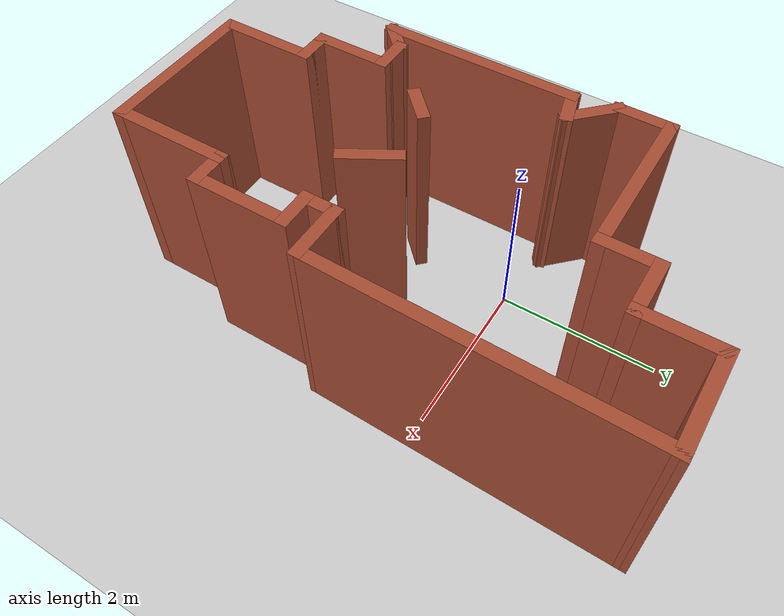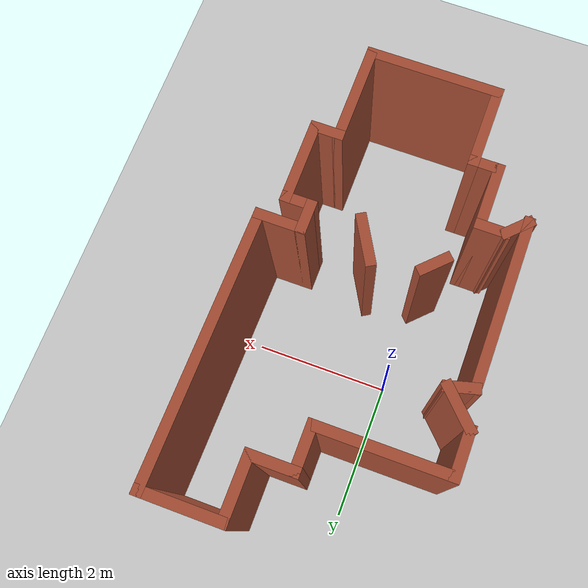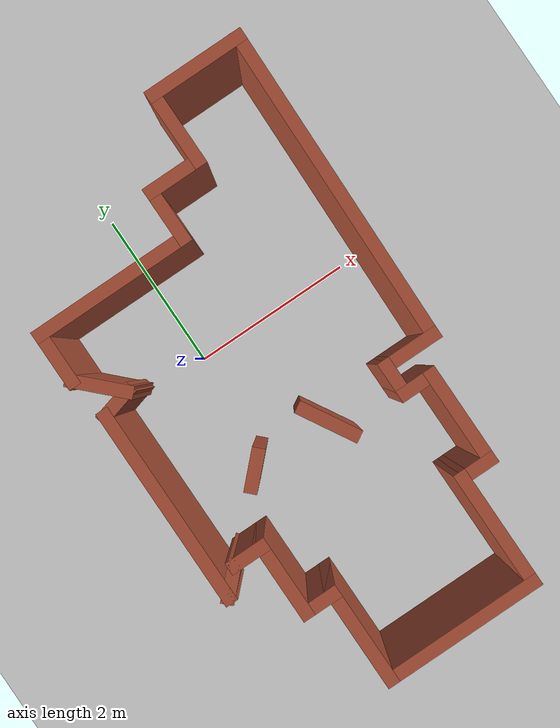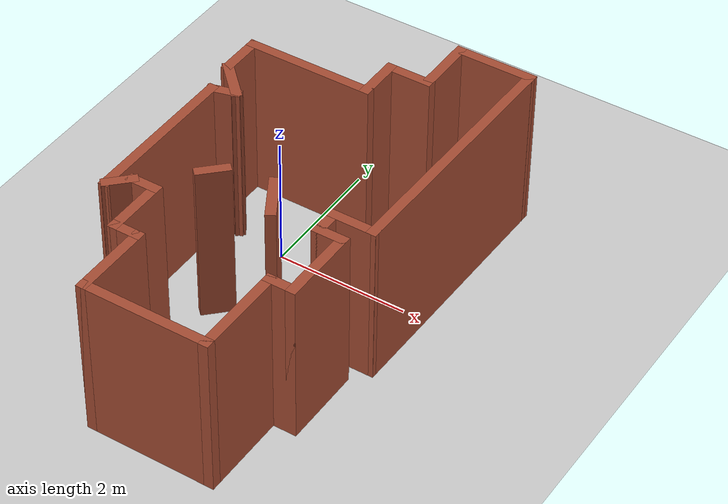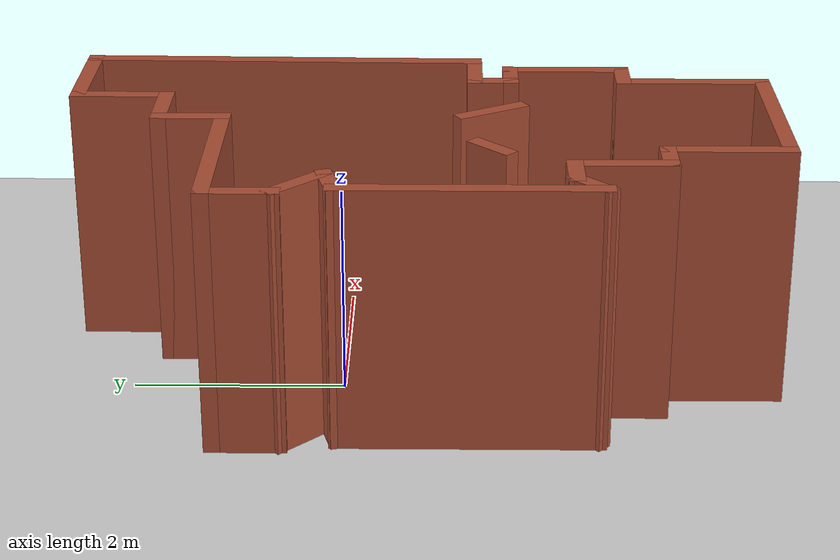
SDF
<sdf version="1.7">
 <world name="default">
  <light name="sun" type="directional">
   <pose>0 0 10 0 -0 0</pose>
   <diffuse>0.8 0.8 0.8 1</diffuse>
   <specular>0.2 0.2 0.2 1</specular>
   <attenuation>
    <range>1000</range>
    <constant>0.9</constant>
    <linear>0.01</linear>
    <quadratic>0.001</quadratic>
   </attenuation>
   <direction>-0.5 0.1 -0.9</direction>
   <spot><inner_angle>0</inner_angle><outer_angle>0</outer_angle><falloff>0</falloff></spot>
  </light>
  <model name="ground_plane">
   <static>1</static>
   <link name="link">
    <collision name="collision">
     <geometry><plane><normal>0 0 1</normal><size>100 100</size></plane></geometry>
     <surface>
      <contact><collide_bitmask>65535</collide_bitmask></contact>
      <friction><ode><mu>100</mu><mu2>50</mu2></ode></friction>
     </surface>
    </collision>
    <visual name="visual">
     <cast_shadows>0</cast_shadows>
     <geometry><plane><normal>0 0 1</normal><size>100 100</size></plane></geometry>
     <material>
      <script><uri>file://media/materials/scripts/gazebo.material</uri><name>Gazebo/Grey</name></script>
     </material>
    </visual>
   </link>
  </model>
  <gravity>0 0 -9.8</gravity>
  <magnetic_field>6e-06 2.3e-05 -4.2e-05</magnetic_field>
  <atmosphere type="adiabatic"/>
  <physics name="default_physics" default="0" type="ode">
   <max_step_size>0.001</max_step_size>
   <real_time_factor>1</real_time_factor>
   <real_time_update_rate>1000</real_time_update_rate>
  </physics>
  <scene><ambient>0.4 0.4 0.4 1</ambient><background>0.7 0.7 0.7 1</background><shadows>1</shadows></scene>
  <audio><device>default</device></audio>
  <spherical_coordinates>
   <surface_model>EARTH_WGS84</surface_model>
   <latitude_deg>0</latitude_deg>
   <longitude_deg>0</longitude_deg>
   <elevation>0</elevation>
   <heading_deg>0</heading_deg>
  </spherical_coordinates>
  <model name="map_2">
   <pose>0.55153 -0.722605 0 0 -0 0</pose>
   <link name="Wall_10">
    <collision name="Wall_10_Collision">
     <geometry><box><size>2.5 0.15 2.5</size></box></geometry>
     <pose>0 0 1.25 0 -0 0</pose>
    </collision>
    <visual name="Wall_10_Visual">
     <pose>0 0 1.25 0 -0 0</pose>
     <geometry><box><size>2.5 0.15 2.5</size></box></geometry>
     <material>
      <script><uri>file://media/materials/scripts/gazebo.material</uri><name>Gazebo/Bricks</name></script>
      <ambient>1 1 1 1</ambient>
     </material>
     <meta><layer>0</layer></meta>
    </visual>
    <pose>-1.67392 -0.431815 0 0 -0 -1.5708</pose>
   </link>
   <link name="Wall_11">
    <collision name="Wall_11_Collision">
     <geometry><box><size>0.5 0.15 2.5</size></box></geometry>
     <pose>0 0 1.25 0 -0 0</pose>
    </collision>
    <visual name="Wall_11_Visual">
     <pose>0 0 1.25 0 -0 0</pose>
     <geometry><box><size>0.5 0.15 2.5</size></box></geometry>
     <material>
      <script><uri>file://media/materials/scripts/gazebo.material</uri><name>Gazebo/Bricks</name></script>
      <ambient>1 1 1 1</ambient>
     </material>
     <meta><layer>0</layer></meta>
    </visual>
    <pose>-1.55018 -1.48307 0 0 -0 0.785398</pose>
   </link>
   <link name="Wall_12">
    <collision name="Wall_12_Collision">
     <geometry><box><size>0.5 0.15 2.5</size></box></geometry>
     <pose>0 0 1.25 0 -0 0</pose>
    </collision>
    <visual name="Wall_12_Visual">
     <pose>0 0 1.25 0 -0 0</pose>
     <geometry><box><size>0.5 0.15 2.5</size></box></geometry>
     <material>
      <script><uri>file://media/materials/scripts/gazebo.material</uri><name>Gazebo/Bricks</name></script>
      <ambient>1 1 1 1</ambient>
     </material>
     <meta><layer>0</layer></meta>
    </visual>
    <pose>-1.25144 -1.35933 0 0 -0 0</pose>
   </link>
   <link name="Wall_13">
    <collision name="Wall_13_Collision">
     <geometry><box><size>1 0.15 2.5</size></box></geometry>
     <pose>0 0 1.25 0 -0 0</pose>
    </collision>
    <visual name="Wall_13_Visual">
     <pose>0 0 1.25 0 -0 0</pose>
     <geometry><box><size>1 0.15 2.5</size></box></geometry>
     <material>
      <script><uri>file://media/materials/scripts/gazebo.material</uri><name>Gazebo/Bricks</name></script>
      <ambient>1 1 1 1</ambient>
     </material>
     <meta><layer>0</layer></meta>
    </visual>
    <pose>-1.07644 -1.78433 0 0 -0 -1.5708</pose>
   </link>
   <link name="Wall_14">
    <collision name="Wall_14_Collision">
     <geometry><box><size>0.5 0.15 2.5</size></box></geometry>
     <pose>0 0 1.25 0 -0 0</pose>
    </collision>
    <visual name="Wall_14_Visual">
     <pose>0 0 1.25 0 -0 0</pose>
     <geometry><box><size>0.5 0.15 2.5</size></box></geometry>
     <material>
      <script><uri>file://media/materials/scripts/gazebo.material</uri><name>Gazebo/Bricks</name></script>
      <ambient>1 1 1 1</ambient>
     </material>
     <meta><layer>0</layer></meta>
    </visual>
    <pose>-0.901435 -2.20933 0 0 -0 0</pose>
   </link>
   <link name="Wall_15">
    <collision name="Wall_15_Collision">
     <geometry><box><size>1.25 0.15 2.5</size></box></geometry>
     <pose>0 0 1.25 0 -0 0</pose>
    </collision>
    <visual name="Wall_15_Visual">
     <pose>0 0 1.25 0 -0 0</pose>
     <geometry><box><size>1.25 0.15 2.5</size></box></geometry>
     <material>
      <script><uri>file://media/materials/scripts/gazebo.material</uri><name>Gazebo/Bricks</name></script>
      <ambient>1 1 1 1</ambient>
     </material>
     <meta><layer>0</layer></meta>
    </visual>
    <pose>-0.726435 -2.75933 0 0 -0 -1.5708</pose>
   </link>
   <link name="Wall_16">
    <collision name="Wall_16_Collision">
     <geometry><box><size>2 0.15 2.5</size></box></geometry>
     <pose>0 0 1.25 0 -0 0</pose>
    </collision>
    <visual name="Wall_16_Visual">
     <pose>0 0 1.25 0 -0 0</pose>
     <geometry><box><size>2 0.15 2.5</size></box></geometry>
     <material>
      <script><uri>file://media/materials/scripts/gazebo.material</uri><name>Gazebo/Bricks</name></script>
      <ambient>1 1 1 1</ambient>
     </material>
     <meta><layer>0</layer></meta>
    </visual>
    <pose>0.198565 -3.30933 0 0 -0 0</pose>
   </link>
   <link name="Wall_17">
    <collision name="Wall_17_Collision">
     <geometry><box><size>1.5 0.15 2.5</size></box></geometry>
     <pose>0 0 1.25 0 -0 0</pose>
    </collision>
    <visual name="Wall_17_Visual">
     <pose>0 0 1.25 0 -0 0</pose>
     <geometry><box><size>1.5 0.15 2.5</size></box></geometry>
     <material>
      <script><uri>file://media/materials/scripts/gazebo.material</uri><name>Gazebo/Bricks</name></script>
      <ambient>1 1 1 1</ambient>
     </material>
     <meta><layer>0</layer></meta>
    </visual>
    <pose>1.12356 -2.63433 0 0 -0 1.5708</pose>
   </link>
   <link name="Wall_18">
    <collision name="Wall_18_Collision">
     <geometry><box><size>0.5 0.15 2.5</size></box></geometry>
     <pose>0 0 1.25 0 -0 0</pose>
    </collision>
    <visual name="Wall_18_Visual">
     <pose>0 0 1.25 0 -0 0</pose>
     <geometry><box><size>0.5 0.15 2.5</size></box></geometry>
     <material>
      <script><uri>file://media/materials/scripts/gazebo.material</uri><name>Gazebo/Bricks</name></script>
      <ambient>1 1 1 1</ambient>
     </material>
     <meta><layer>0</layer></meta>
    </visual>
    <pose>1.29856 -1.95933 0 0 -0 0</pose>
   </link>
   <link name="Wall_19">
    <collision name="Wall_19_Collision">
     <geometry><box><size>1.25 0.15 2.5</size></box></geometry>
     <pose>0 0 1.25 0 -0 0</pose>
    </collision>
    <visual name="Wall_19_Visual">
     <pose>0 0 1.25 0 -0 0</pose>
     <geometry><box><size>1.25 0.15 2.5</size></box></geometry>
     <material>
      <script><uri>file://media/materials/scripts/gazebo.material</uri><name>Gazebo/Bricks</name></script>
      <ambient>1 1 1 1</ambient>
     </material>
     <meta><layer>0</layer></meta>
    </visual>
    <pose>1.47357 -1.40933 0 0 -0 1.5708</pose>
   </link>
   <link name="Wall_2">
    <collision name="Wall_2_Collision">
     <geometry><box><size>1.25 0.15 2.5</size></box></geometry>
     <pose>0 0 1.25 0 -0 0</pose>
    </collision>
    <visual name="Wall_2_Visual">
     <pose>0 0 1.25 0 -0 0</pose>
     <geometry><box><size>1.25 0.15 2.5</size></box></geometry>
     <material>
      <script><uri>file://media/materials/scripts/gazebo.material</uri><name>Gazebo/Bricks</name></script>
      <ambient>1 1 1 1</ambient>
     </material>
     <meta><layer>0</layer></meta>
    </visual>
    <pose>1.23989 3.30804 0 0 -0 3.14159</pose>
   </link>
   <link name="Wall_20">
    <collision name="Wall_20_Collision">
     <geometry><box><size>0.5 0.15 2.5</size></box></geometry>
     <pose>0 0 1.25 0 -0 0</pose>
    </collision>
    <visual name="Wall_20_Visual">
     <pose>0 0 1.25 0 -0 0</pose>
     <geometry><box><size>0.5 0.15 2.5</size></box></geometry>
     <material>
      <script><uri>file://media/materials/scripts/gazebo.material</uri><name>Gazebo/Bricks</name></script>
      <ambient>1 1 1 1</ambient>
     </material>
     <meta><layer>0</layer></meta>
    </visual>
    <pose>1.29856 -0.859327 0 0 -0 3.14159</pose>
   </link>
   <link name="Wall_21">
    <collision name="Wall_21_Collision">
     <geometry><box><size>0.5 0.15 2.5</size></box></geometry>
     <pose>0 0 1.25 0 -0 0</pose>
    </collision>
    <visual name="Wall_21_Visual">
     <pose>0 0 1.25 0 -0 0</pose>
     <geometry><box><size>0.5 0.15 2.5</size></box></geometry>
     <material>
      <script><uri>file://media/materials/scripts/gazebo.material</uri><name>Gazebo/Bricks</name></script>
      <ambient>1 1 1 1</ambient>
     </material>
     <meta><layer>0</layer></meta>
    </visual>
    <pose>1.12356 -0.684327 0 0 -0 1.5708</pose>
   </link>
   <link name="Wall_24">
    <collision name="Wall_24_Collision">
     <geometry><box><size>0.75 0.15 2.5</size></box></geometry>
     <pose>0 0 1.25 0 -0 0</pose>
    </collision>
    <visual name="Wall_24_Visual">
     <pose>0 0 1.25 0 -0 0</pose>
     <geometry><box><size>0.75 0.15 2.5</size></box></geometry>
     <material>
      <script><uri>file://media/materials/scripts/gazebo.material</uri><name>Gazebo/Bricks</name></script>
      <ambient>1 1 1 1</ambient>
     </material>
     <meta><layer>0</layer></meta>
    </visual>
    <pose>1.42356 -0.509327 0 0 -0 0</pose>
   </link>
   <link name="Wall_25">
    <collision name="Wall_25_Collision">
     <geometry><box><size>3.96794 0.15 2.5</size></box></geometry>
     <pose>0 0 1.25 0 -0 0</pose>
    </collision>
    <visual name="Wall_25_Visual">
     <pose>0 0 1.25 0 -0 0</pose>
     <geometry><box><size>3.96794 0.15 2.5</size></box></geometry>
     <material>
      <script><uri>file://media/materials/scripts/gazebo.material</uri><name>Gazebo/Bricks</name></script>
      <ambient>1 1 1 1</ambient>
     </material>
     <meta><layer>0</layer></meta>
    </visual>
    <pose>1.75673 1.39935 0 0 -0 1.55342</pose>
   </link>
   <link name="Wall_27">
    <collision name="Wall_27_Collision">
     <geometry><box><size>0.5 0.15 2.5</size></box></geometry>
     <pose>0 0 1.25 0 -0 0</pose>
    </collision>
    <visual name="Wall_27_Visual">
     <pose>0 0 1.25 0 -0 0</pose>
     <geometry><box><size>0.5 0.15 2.5</size></box></geometry>
     <material>
      <script><uri>file://media/materials/scripts/gazebo.material</uri><name>Gazebo/Bricks</name></script>
      <ambient>1 1 1 1</ambient>
     </material>
     <meta><layer>0</layer></meta>
    </visual>
    <pose>-0.676997 -0.639207 0 0 -0 0.785398</pose>
   </link>
   <link name="Wall_29">
    <collision name="Wall_29_Collision">
     <geometry><box><size>0.75 0.15 2.5</size></box></geometry>
     <pose>0 0 1.25 0 -0 0</pose>
    </collision>
    <visual name="Wall_29_Visual">
     <pose>0 0 1.25 0 -0 0</pose>
     <geometry><box><size>0.75 0.15 2.5</size></box></geometry>
     <material>
      <script><uri>file://media/materials/scripts/gazebo.material</uri><name>Gazebo/Bricks</name></script>
      <ambient>1 1 1 1</ambient>
     </material>
     <meta><layer>0</layer></meta>
    </visual>
    <pose>0.274484 -0.652669 0 0 -0 -1.0472</pose>
   </link>
   <link name="Wall_3">
    <collision name="Wall_3_Collision">
     <geometry><box><size>1 0.15 2.5</size></box></geometry>
     <pose>0 0 1.25 0 -0 0</pose>
    </collision>
    <visual name="Wall_3_Visual">
     <pose>0 0 1.25 0 -0 0</pose>
     <geometry><box><size>1 0.15 2.5</size></box></geometry>
     <material>
      <script><uri>file://media/materials/scripts/gazebo.material</uri><name>Gazebo/Bricks</name></script>
      <ambient>1 1 1 1</ambient>
     </material>
     <meta><layer>0</layer></meta>
    </visual>
    <pose>0.689887 2.88304 0 0 -0 -1.5708</pose>
   </link>
   <link name="Wall_4">
    <collision name="Wall_4_Collision">
     <geometry><box><size>0.75 0.15 2.5</size></box></geometry>
     <pose>0 0 1.25 0 -0 0</pose>
    </collision>
    <visual name="Wall_4_Visual">
     <pose>0 0 1.25 0 -0 0</pose>
     <geometry><box><size>0.75 0.15 2.5</size></box></geometry>
     <material>
      <script><uri>file://media/materials/scripts/gazebo.material</uri><name>Gazebo/Bricks</name></script>
      <ambient>1 1 1 1</ambient>
     </material>
     <meta><layer>0</layer></meta>
    </visual>
    <pose>0.389887 2.45804 0 0 -0 3.14159</pose>
   </link>
   <link name="Wall_5">
    <collision name="Wall_5_Collision">
     <geometry><box><size>0.75 0.15 2.5</size></box></geometry>
     <pose>0 0 1.25 0 -0 0</pose>
    </collision>
    <visual name="Wall_5_Visual">
     <pose>0 0 1.25 0 -0 0</pose>
     <geometry><box><size>0.75 0.15 2.5</size></box></geometry>
     <material>
      <script><uri>file://media/materials/scripts/gazebo.material</uri><name>Gazebo/Bricks</name></script>
      <ambient>1 1 1 1</ambient>
     </material>
     <meta><layer>0</layer></meta>
    </visual>
    <pose>0.089887 2.15804 0 0 -0 -1.5708</pose>
   </link>
   <link name="Wall_6">
    <collision name="Wall_6_Collision">
     <geometry><box><size>2 0.15 2.5</size></box></geometry>
     <pose>0 0 1.25 0 -0 0</pose>
    </collision>
    <visual name="Wall_6_Visual">
     <pose>0 0 1.25 0 -0 0</pose>
     <geometry><box><size>2 0.15 2.5</size></box></geometry>
     <material>
      <script><uri>file://media/materials/scripts/gazebo.material</uri><name>Gazebo/Bricks</name></script>
      <ambient>1 1 1 1</ambient>
     </material>
     <meta><layer>0</layer></meta>
    </visual>
    <pose>-0.835113 1.85804 0 0 -0 3.14159</pose>
   </link>
   <link name="Wall_7">
    <collision name="Wall_7_Collision">
     <geometry><box><size>0.75 0.15 2.5</size></box></geometry>
     <pose>0 0 1.25 0 -0 0</pose>
    </collision>
    <visual name="Wall_7_Visual">
     <pose>0 0 1.25 0 -0 0</pose>
     <geometry><box><size>0.75 0.15 2.5</size></box></geometry>
     <material>
      <script><uri>file://media/materials/scripts/gazebo.material</uri><name>Gazebo/Bricks</name></script>
      <ambient>1 1 1 1</ambient>
     </material>
     <meta><layer>0</layer></meta>
    </visual>
    <pose>-1.76011 1.55804 0 0 -0 -1.5708</pose>
   </link>
   <link name="Wall_8">
    <collision name="Wall_8_Collision">
     <geometry><box><size>0.75 0.15 2.5</size></box></geometry>
     <pose>0 0 1.25 0 -0 0</pose>
    </collision>
    <visual name="Wall_8_Visual">
     <pose>0 0 1.25 0 -0 0</pose>
     <geometry><box><size>0.75 0.15 2.5</size></box></geometry>
     <material>
      <script><uri>file://media/materials/scripts/gazebo.material</uri><name>Gazebo/Bricks</name></script>
      <ambient>1 1 1 1</ambient>
     </material>
     <meta><layer>0</layer></meta>
    </visual>
    <pose>-1.54798 1.0459 0 0 -0 -0.785398</pose>
   </link>
   <link name="Wall_9">
    <collision name="Wall_9_Collision">
     <geometry><box><size>0.5 0.15 2.5</size></box></geometry>
     <pose>0 0 1.25 0 -0 0</pose>
    </collision>
    <visual name="Wall_9_Visual">
     <pose>0 0 1.25 0 -0 0</pose>
     <geometry><box><size>0.5 0.15 2.5</size></box></geometry>
     <material>
      <script><uri>file://media/materials/scripts/gazebo.material</uri><name>Gazebo/Bricks</name></script>
      <ambient>1 1 1 1</ambient>
     </material>
     <meta><layer>0</layer></meta>
    </visual>
    <pose>-1.50489 0.788479 0 0 -0 -2.87979</pose>
   </link>
   <static>1</static>
  </model>
 </world>
</sdf>
